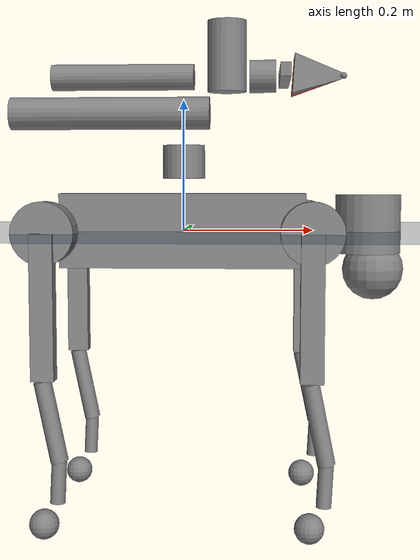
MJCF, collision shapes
<mujoco model="go2arx5 scene">
    <include file="go2arx5.xml" />

    <statistic center="0 0 0.1" extent="0.8" />

    <visual>
        <headlight diffuse="0.6 0.6 0.6" ambient="0.3 0.3 0.3" specular="0 0 0" />
        <rgba haze="0.15 0.25 0.35 1" />
        <global azimuth="-130" elevation="-20" />
    </visual>

    <asset>
        <texture type="skybox" builtin="gradient" rgb1="0.3 0.5 0.7" rgb2="0 0 0" width="512"
            height="3072" />
        <texture type="2d" name="groundplane" builtin="checker" mark="edge" rgb1="0.2 0.3 0.4"
            rgb2="0.1 0.2 0.3"
            markrgb="0.8 0.8 0.8" width="300" height="300" />
        <material name="groundplane" texture="groundplane" texuniform="true" texrepeat="5 5"
            reflectance="0.2" />
    </asset>

    <worldbody>
        <light pos="0 0 1.5" dir="0 0 -1" directional="true" />
        <geom name="floor" size="0 0 0.05" type="plane" material="groundplane" />
    </worldbody>
</mujoco>

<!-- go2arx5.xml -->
<mujoco model="go2arx5">
    <compiler angle="radian" meshdir="assets" autolimits="true" />

    <default>
        <default class="go2">
            <geom friction="0.6" margin="0.001" condim="1" />
            <joint axis="0 1 0" damping="2.0" armature="0.01" frictionloss="0.2" />
            <motor ctrlrange="-23.7 23.7" />
            <default class="abduction">
                <joint axis="1 0 0" range="-1.0472 1.0472" />
            </default>
            <default class="hip">
                <default class="front_hip">
                    <joint range="-1.5708 3.4907" />
                </default>
                <default class="back_hip">
                    <joint range="-0.5236 4.5379" />
                </default>
            </default>
            <default class="knee">
                <joint range="-2.7227 -0.83776" />
                <motor ctrlrange="-45.43 45.43" />
            </default>
            <default class="visual">
                <geom type="mesh" contype="0" conaffinity="0" group="2" />
            </default>
            <default class="collision">
                <geom group="3" />
                <default class="foot">
                    <geom size="0.022" pos="-0.002 0 -0.213" priority="1"
                        condim="6"
                        friction="0.8 0.02 0.01" />
                </default>
            </default>
        </default>
        <default class="arx5">
            <joint damping="0.1" armature="0.0" frictionloss="0.05" />
            <general ctrlrange="-30 30" />
            <default class="arx5_collision">
                <geom type="cylinder" group="3" mass="0" density="0" />
            </default>
            <default class="arx5_finger_collision">
                <geom condim="4" group="3" mass="0" density="0" solimp="2 1 0.01" solref="0.01 1"
                    friction="1 0.005 0.0001" />
            </default>
        </default>
    </default>

    <asset>
        <material name="metal" rgba=".9 .95 .95 1" />
        <material name="black" rgba="0 0 0 1" />
        <material name="white" rgba="1 1 1 1" />
        <material name="gray" rgba="0.671705 0.692426 0.774270 1" />

        <mesh file="base_0.obj" />
        <mesh file="base_1.obj" />
        <mesh file="base_2.obj" />
        <mesh file="base_3.obj" />
        <mesh file="base_4.obj" />
        <mesh file="hip_0.obj" />
        <mesh file="hip_1.obj" />
        <mesh file="thigh_0.obj" />
        <mesh file="thigh_1.obj" />
        <mesh file="thigh_mirror_0.obj" />
        <mesh file="thigh_mirror_1.obj" />
        <mesh file="calf_0.obj" />
        <mesh file="calf_1.obj" />
        <mesh file="calf_mirror_0.obj" />
        <mesh file="calf_mirror_1.obj" />
        <mesh file="foot.obj" />

        <mesh file="base_link.STL" name="BaseLink" />
        <mesh file="link1.STL" name="Link1" />
        <mesh file="link2.STL" name="Link2" />
        <mesh file="link3.STL" name="Link3" />
        <mesh file="link4.STL" name="Link4" />
        <mesh file="link5.STL" name="Link5" />
        <mesh file="arx5_gripper_motor.obj" name="arx_gripper_motor" />
        <mesh file="arx5_gripper_gear.obj" name="arx_gripper_gear" />
        <mesh file="arx5_gripper_left_finger.obj" name="arx_gripper_left_finger" />
        <mesh file="arx5_gripper_left_finger001.obj" name="arx_gripper_left_finger_collision_001" />
        <mesh file="arx5_gripper_left_finger002.obj" name="arx_gripper_left_finger_collision_002" />
        <mesh file="arx5_gripper_right_finger.obj" name="arx_gripper_right_finger" />
        <mesh file="arx5_gripper_right_finger000.obj" name="arx_gripper_right_finger_collision_000" />
        <mesh file="arx5_gripper_collision_right_manual.obj"
            name="arx5_gripper_collision_right_manual" />
        <mesh file="arx5_gripper_collision_left_manual.obj"
            name="arx5_gripper_collision_left_manual" />

    </asset>

    <worldbody>
        <body name="base" childclass="go2">
            <freejoint />
            <camera mode='track' name="main" pos="1.0 0.8 0.5"
                xyaxes="-0.710 0.705 0.000 -0.124 -0.125 0.484" fovy="52.5" />
            <camera mode='track' name="front" pos="1.0 0.000 0.000"
                xyaxes="0.0 1.0 0.000 0.0 0.00 1.000" fovy="70" />
            <inertial pos="0.021112 0 -0.005366" quat="-0.000543471 0.713435 -0.00173769 0.700719"
                mass="6.921"
                diaginertia="0.107027 0.0980771 0.0244531" />
            <geom mesh="base_0" material="black" class="visual" />
            <geom mesh="base_1" material="black" class="visual" />
            <geom mesh="base_2" material="black" class="visual" />
            <geom mesh="base_3" material="white" class="visual" />
            <geom mesh="base_4" material="gray" class="visual" />
            <geom size="0.1881 0.04675 0.057" type="box" class="collision" />
            <geom size="0.05 0.045" pos="0.285 0 0.01" type="cylinder" class="collision" />
            <geom size="0.047" pos="0.293 0 -0.06" class="collision" />
            <site name="imu" pos="-0.02557 0 0.04232" />
            <body name="FL_hip" pos="0.1934 0.0465 0">
                <inertial pos="-0.0054 0.00194 -0.000105" quat="0.497014 0.499245 0.505462 0.498237"
                    mass="0.678"
                    diaginertia="0.00088403 0.000596003 0.000479967" />
                <joint name="FL_hip_joint" class="abduction" />
                <geom mesh="hip_0" material="metal" class="visual" />
                <geom mesh="hip_1" material="gray" class="visual" />
                <geom size="0.046 0.02" pos="0 0.08 0" quat="1 1 0 0" type="cylinder"
                    class="collision" />
                <body name="FL_thigh" pos="0 0.0955 0">
                    <inertial pos="-0.00374 -0.0223 -0.0327"
                        quat="0.829533 0.0847635 -0.0200632 0.551623"
                        mass="1.152"
                        diaginertia="0.00594973 0.00584149 0.000878787" />
                    <joint name="FL_thigh_joint" class="front_hip" />
                    <geom mesh="thigh_0" material="metal" class="visual" />
                    <geom mesh="thigh_1" material="gray" class="visual" />
                    <geom size="0.1065 0.01225 0.017" pos="0 0 -0.1065" quat="0.707107 0 0.707107 0"
                        type="box" class="collision" />
                    <body name="FL_calf" pos="0 0 -0.213">
                        <inertial pos="0.00629595 -0.000622121 -0.141417"
                            quat="0.710672 0.00154099 -0.00450087 0.703508"
                            mass="0.241352" diaginertia="0.0014901 0.00146356 5.31397e-05" />
                        <joint name="FL_calf_joint" class="knee" />
                        <geom mesh="calf_0" material="gray" class="visual" />
                        <geom mesh="calf_1" material="black" class="visual" />
                        <geom size="0.012 0.06" pos="0.008 0 -0.06" quat="0.994493 0 -0.104807 0"
                            type="cylinder" class="collision" />
                        <geom size="0.011 0.0325" pos="0.02 0 -0.148" quat="0.999688 0 0.0249974 0"
                            type="cylinder" class="collision" />
                        <geom pos="0 0 -0.213" mesh="foot" class="visual" material="black" />
                        <geom name="FL" class="foot" />
                    </body>
                </body>
            </body>
            <body name="FR_hip" pos="0.1934 -0.0465 0">
                <inertial pos="-0.0054 -0.00194 -0.000105"
                    quat="0.498237 0.505462 0.499245 0.497014"
                    mass="0.678"
                    diaginertia="0.00088403 0.000596003 0.000479967" />
                <joint name="FR_hip_joint" class="abduction" />
                <geom mesh="hip_0" material="metal" class="visual" quat="4.63268e-05 1 0 0" />
                <geom mesh="hip_1" material="gray" class="visual" quat="4.63268e-05 1 0 0" />
                <geom size="0.046 0.02" pos="0 -0.08 0" quat="0.707107 0.707107 0 0" type="cylinder"
                    class="collision" />
                <body name="FR_thigh" pos="0 -0.0955 0">
                    <inertial pos="-0.00374 0.0223 -0.0327"
                        quat="0.551623 -0.0200632 0.0847635 0.829533"
                        mass="1.152"
                        diaginertia="0.00594973 0.00584149 0.000878787" />
                    <joint name="FR_thigh_joint" class="front_hip" />
                    <geom mesh="thigh_mirror_0" material="metal" class="visual" />
                    <geom mesh="thigh_mirror_1" material="gray" class="visual" />
                    <geom size="0.1065 0.01225 0.017" pos="0 0 -0.1065" quat="0.707107 0 0.707107 0"
                        type="box" class="collision" />
                    <body name="FR_calf" pos="0 0 -0.213">
                        <inertial pos="0.00629595 0.000622121 -0.141417"
                            quat="0.703508 -0.00450087 0.00154099 0.710672"
                            mass="0.241352" diaginertia="0.0014901 0.00146356 5.31397e-05" />
                        <joint name="FR_calf_joint" class="knee" />
                        <geom mesh="calf_mirror_0" material="gray" class="visual" />
                        <geom mesh="calf_mirror_1" material="black" class="visual" />
                        <geom size="0.013 0.06" pos="0.01 0 -0.06" quat="0.995004 0 -0.0998334 0"
                            type="cylinder" class="collision" />
                        <geom size="0.011 0.0325" pos="0.02 0 -0.148" quat="0.999688 0 0.0249974 0"
                            type="cylinder" class="collision" />
                        <geom pos="0 0 -0.213" mesh="foot" class="visual" material="black" />
                        <geom name="FR" class="foot" />
                    </body>
                </body>
            </body>
            <body name="RL_hip" pos="-0.1934 0.0465 0">
                <inertial pos="0.0054 0.00194 -0.000105" quat="0.505462 0.498237 0.497014 0.499245"
                    mass="0.678"
                    diaginertia="0.00088403 0.000596003 0.000479967" />
                <joint name="RL_hip_joint" class="abduction" />
                <geom mesh="hip_0" material="metal" class="visual" quat="4.63268e-05 0 1 0" />
                <geom mesh="hip_1" material="gray" class="visual" quat="4.63268e-05 0 1 0" />
                <geom size="0.046 0.02" pos="0 0.08 0" quat="0.707107 0.707107 0 0" type="cylinder"
                    class="collision" />
                <body name="RL_thigh" pos="0 0.0955 0">
                    <inertial pos="-0.00374 -0.0223 -0.0327"
                        quat="0.829533 0.0847635 -0.0200632 0.551623"
                        mass="1.152"
                        diaginertia="0.00594973 0.00584149 0.000878787" />
                    <joint name="RL_thigh_joint" class="back_hip" />
                    <geom mesh="thigh_0" material="metal" class="visual" />
                    <geom mesh="thigh_1" material="gray" class="visual" />
                    <geom size="0.1065 0.01225 0.017" pos="0 0 -0.1065" quat="0.707107 0 0.707107 0"
                        type="box" class="collision" />
                    <body name="RL_calf" pos="0 0 -0.213">
                        <inertial pos="0.00629595 -0.000622121 -0.141417"
                            quat="0.710672 0.00154099 -0.00450087 0.703508"
                            mass="0.241352" diaginertia="0.0014901 0.00146356 5.31397e-05" />
                        <joint name="RL_calf_joint" class="knee" />
                        <geom mesh="calf_0" material="gray" class="visual" />
                        <geom mesh="calf_1" material="black" class="visual" />
                        <geom size="0.013 0.06" pos="0.01 0 -0.06" quat="0.995004 0 -0.0998334 0"
                            type="cylinder" class="collision" />
                        <geom size="0.011 0.0325" pos="0.02 0 -0.148" quat="0.999688 0 0.0249974 0"
                            type="cylinder" class="collision" />
                        <geom pos="0 0 -0.213" mesh="foot" class="visual" material="black" />
                        <geom name="RL" class="foot" />
                    </body>
                </body>
            </body>
            <body name="RR_hip" pos="-0.1934 -0.0465 0">
                <inertial pos="0.0054 -0.00194 -0.000105" quat="0.499245 0.497014 0.498237 0.505462"
                    mass="0.678"
                    diaginertia="0.00088403 0.000596003 0.000479967" />
                <joint name="RR_hip_joint" class="abduction" />
                <geom mesh="hip_0" material="metal" class="visual"
                    quat="2.14617e-09 4.63268e-05 4.63268e-05 -1" />
                <geom mesh="hip_1" material="gray" class="visual"
                    quat="2.14617e-09 4.63268e-05 4.63268e-05 -1" />
                <geom size="0.046 0.02" pos="0 -0.08 0" quat="0.707107 0.707107 0 0" type="cylinder"
                    class="collision" />
                <body name="RR_thigh" pos="0 -0.0955 0">
                    <inertial pos="-0.00374 0.0223 -0.0327"
                        quat="0.551623 -0.0200632 0.0847635 0.829533"
                        mass="1.152"
                        diaginertia="0.00594973 0.00584149 0.000878787" />
                    <joint name="RR_thigh_joint" class="back_hip" />
                    <geom mesh="thigh_mirror_0" material="metal" class="visual" />
                    <geom mesh="thigh_mirror_1" material="gray" class="visual" />
                    <geom size="0.1065 0.01225 0.017" pos="0 0 -0.1065" quat="0.707107 0 0.707107 0"
                        type="box" class="collision" />
                    <body name="RR_calf" pos="0 0 -0.213">
                        <inertial pos="0.00629595 0.000622121 -0.141417"
                            quat="0.703508 -0.00450087 0.00154099 0.710672"
                            mass="0.241352" diaginertia="0.0014901 0.00146356 5.31397e-05" />
                        <joint name="RR_calf_joint" class="knee" />
                        <geom mesh="calf_mirror_0" material="gray" class="visual" />
                        <geom mesh="calf_mirror_1" material="black" class="visual" />
                        <geom size="0.013 0.06" pos="0.01 0 -0.06" quat="0.995004 0 -0.0998334 0"
                            type="cylinder" class="collision" />
                        <geom size="0.011 0.0325" pos="0.02 0 -0.148" quat="0.999688 0 0.0249974 0"
                            type="cylinder" class="collision" />
                        <geom pos="0 0 -0.213" mesh="foot" class="visual" material="black" />
                        <geom name="RR" class="foot" />
                    </body>
                </body>
            </body>

            <!-- todo fix joint limits and efforts -->
            <body name="arx5_base_link" childclass="arx5" pos="0.0 0 0.08">
                <inertial pos="-2.9972E-05 3.056E-05 0.027301"
                    mass="0.44038"
                    diaginertia="0.00017 0.00018 0.00016"
                />
                <geom class="visual" mesh="BaseLink" />
                <geom size="0.0325 0.0255" pos="0 0 0.0255" class="arx5_collision" />
                <body name="link1" pos="0 0 0.0603">
                    <inertial pos="0.00609525411893452 -0.00429681977500749 0.0179590247477389"
                        mass="0.0608351104988555"
                        diaginertia="0.00008 0.00003 0.00007" />
                    <joint name="joint1" axis="0 0 1" range="-3.141592653589793 3.141592653589793"
                        class="arx5" />
                    <geom class="visual" mesh="Link1" />
                    <body name="link2" pos="0.02 0 0.0402">
                        <inertial pos="-0.132382037190567 0.00220380675553821 0.000111790164679923"
                            mass="1.0733279014126"
                            diaginertia="0.00050 0.01596 0.01602" />
                        <joint name="joint2" axis="0 1 0" range="0 3.66519" class="arx5" />
                        <geom class="visual" mesh="Link2" />
                        <geom size="0.025 0.155" pos="-0.135 0 0" quat="1 0 1 0"
                            class="arx5_collision" />
                        <body name="link3" pos="-0.264 0 0" euler="-3.1416 0 0">
                            <inertial
                                pos="0.187203287369961 -0.000305676361444925 -0.0514832866415513"
                                mass="0.499404738025019"
                                diaginertia="0.00033 0.00387 0.00383" />
                            <joint name="joint3" axis="0 1 0" range="0 3.141592653589793"
                                class="arx5" />
                            <geom class="visual" mesh="Link3" />
                            <geom size="0.02 0.11" pos="0.15 0 -0.055" quat="1 0 1 0"
                                class="arx5_collision" />
                            <body name="link4" pos="0.245 0 -0.056">
                                <inertial
                                    pos="0.0388884702662706 0.00295168681334743 -0.0353282735009622"
                                    mass="0.0809712553169999" diaginertia="0.00013 0.00016 0.00010" />
                                <joint name="joint4" axis="0 1 0"
                                    range="-1.57079632679 1.57079632679" class="arx5" />
                                <geom class="visual" mesh="Link4" />
                                <geom size="0.03 0.054" pos="0.06575 -0.001 -0.03"
                                    class="arx5_collision" />
                                <body name="link5" pos="0.06575 -0.001 -0.0825">
                                    <inertial
                                        pos="0.00289956909960302 3.15826689885766E-05 0.0526188859211408"
                                        mass="0.602357399313257"
                                        diaginertia="0.00072 0.00069 0.00021" />
                                    <geom size="0.025 0.02" pos="0.055 0.00 0.083"
                                        quat="1 0 1 0"
                                        class="arx5_collision" />
                                    <joint name="joint5" axis="0 0 1"
                                        range="-1.57079632679 1.57079632679" class="arx5" />
                                    <geom class="visual" mesh="Link5" />
                                    <body name="link6" pos="0.02845 0 0.0825" euler="-3.1416 0 0">
                                        <site name="end_effector" pos="0.15 0 0"
                                            euler="0 1.57079632679 -1.57079632679"
                                        />
                                        <inertial
                                            pos="0.0471798400661976 0.000102970421835668 -0.000138510949393961"
                                            mass="0.462244960775882"
                                            diaginertia="0.00068 0.00036 0.00091" />
                                        <joint name="joint6" axis="1 0 0"
                                            range="-1.57079632679 1.57079632679" class="arx5" />
                                        <geom type="box" size="0.01 0.09 0.008"
                                            pos="0.06 0.00 0.00"
                                            quat="1 0 1 0"
                                            class="arx5_collision" />
                                        <geom class="visual" mesh="arx_gripper_motor" />
                                        <body name="left_finger">
                                            <joint name="left_finger_joint" axis="0 1 0"
                                                range="0.001 0.045" type="slide" class="arx5"
                                                armature="0.243" damping="40" />
                                            <inertial
                                                pos="0 0 0"
                                                mass="0.0001"
                                                diaginertia="0.00068 0.00036 0.00091" />
                                            <geom class="visual" mesh="arx_gripper_left_finger" />
                                            <geom class="arx5_collision" type="mesh"
                                                mesh="arx5_gripper_collision_left_manual"
                                                pos="0.0 -0.029 0" />
                                            <geom class="arx5_finger_collision" type="mesh"
                                                mesh="arx5_gripper_collision_left_manual"
                                                pos="0.0 -0.03 0" rgba="1 0 0 1" />
                                        </body>
                                        <body name="right_finger">
                                            <joint name="right_finger_joint" axis="0 1 0"
                                                range="-0.045 -0.001" type="slide" class="arx5"
                                                armature="0.243" damping="40" />
                                            <inertial
                                                pos="0 0 0"
                                                mass="0.0001"
                                                diaginertia="0.00068 0.00036 0.00091" />
                                            <geom class="visual"
                                                mesh="arx_gripper_right_finger" />
                                            <geom class="arx5_collision" type="mesh"
                                                mesh="arx5_gripper_collision_right_manual"
                                                pos="0.0 0.029 0" />
                                            <geom class="arx5_finger_collision" type="mesh"
                                                mesh="arx5_gripper_collision_right_manual"
                                                pos="0.0 0.03 0" rgba="1 0 0 1" />
                                        </body>
                                        <geom class="visual" mesh="arx_gripper_gear" />
                                    </body>
                                </body>
                            </body>
                        </body>
                    </body>
                </body>
            </body>
        </body>
    </worldbody>

    <actuator>
        <motor class="abduction" name="FL_hip_joint" joint="FL_hip_joint" />
        <motor class="hip" name="FL_thigh_joint" joint="FL_thigh_joint" />
        <motor class="knee" name="FL_calf_joint" joint="FL_calf_joint" />
        <motor class="abduction" name="FR_hip_joint" joint="FR_hip_joint" />
        <motor class="hip" name="FR_thigh_joint" joint="FR_thigh_joint" />
        <motor class="knee" name="FR_calf_joint" joint="FR_calf_joint" />
        <motor class="abduction" name="RL_hip_joint" joint="RL_hip_joint" />
        <motor class="hip" name="RL_thigh_joint" joint="RL_thigh_joint" />
        <motor class="knee" name="RL_calf_joint" joint="RL_calf_joint" />
        <motor class="abduction" name="RR_hip_joint" joint="RR_hip_joint" />
        <motor class="hip" name="RR_thigh_joint" joint="RR_thigh_joint" />
        <motor class="knee" name="RR_calf_joint" joint="RR_calf_joint" />

        <general class="arx5" name="joint1" joint="joint1" />
        <general class="arx5" name="joint2" joint="joint2" />
        <general class="arx5" name="joint3" joint="joint3" />
        <general class="arx5" name="joint4" joint="joint4" />
        <general class="arx5" name="joint5" joint="joint5" />
        <general class="arx5" name="joint6" joint="joint6" />
        <general class="arx5" name="left_finger_joint" joint="left_finger_joint" />
    </actuator>

    <equality>
        <joint name="gripper" joint1="left_finger_joint" joint2="right_finger_joint"
            polycoef="0.0 -1.0 0 0 0" solimp=".95 .99 .0001" />
    </equality>

    <sensor>
        <!-- TODO use reftype and refname to handle local transformations -->
        <framelinvel name='trunk_root_lin_vel' objtype="xbody" objname="base" />
        <frameangvel name='trunk_root_ang_vel' objtype="xbody" objname="base" />
    </sensor>

</mujoco>
